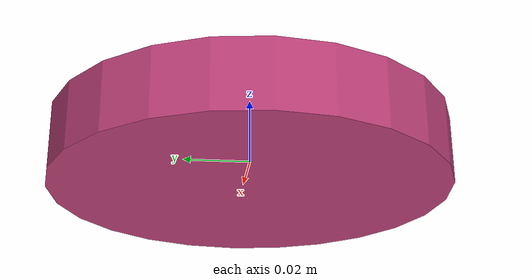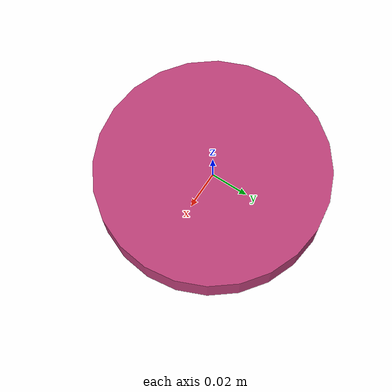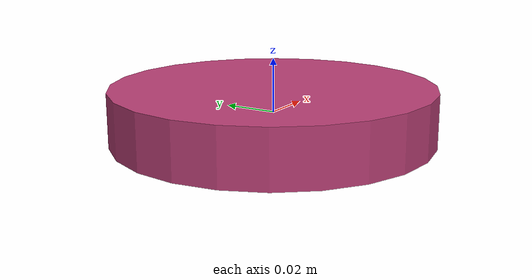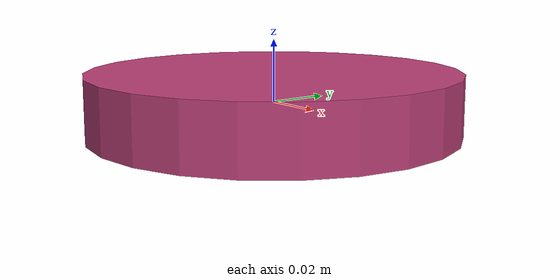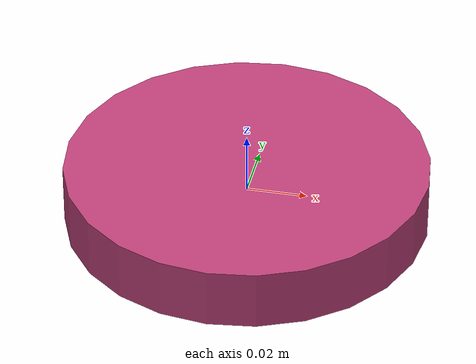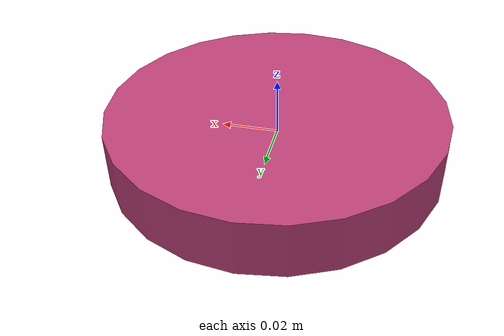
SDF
<?xml version="1.0"?>
<sdf version="1.5">
  <model name="cake_icing">
    <static>false</static>
    <link name="cake_icing">
      <collision name="cake_icing">
        <geometry>
          <cylinder>
            <radius>0.06</radius>
            <length>0.02</length>
          </cylinder>
        </geometry>
      </collision>
      <inertial>
        <inertia>
          <ixx>0.1</ixx>
          <ixy>0</ixy>
          <ixz>0</ixz>
          <iyy>0.1</iyy>
          <iyz>0</iyz>
          <izz>0.1</izz>
        </inertia>
        <mass>0.1</mass>
      </inertial>
      <visual name="cake_icing">
        <geometry>
          <cylinder>
            <radius>0.06</radius>
            <length>0.02</length>
          </cylinder>
        </geometry>
        <material>
          <ambient>0.74 0.25 0.47 1</ambient>
          <diffuse>0.74 0.25 0.47 1</diffuse>
          <specular>0.1 0.1 0.1 1</specular>
          <emissive>0 0 0 0</emissive>
        </material>
      </visual>
    </link>

  </model>
</sdf>
